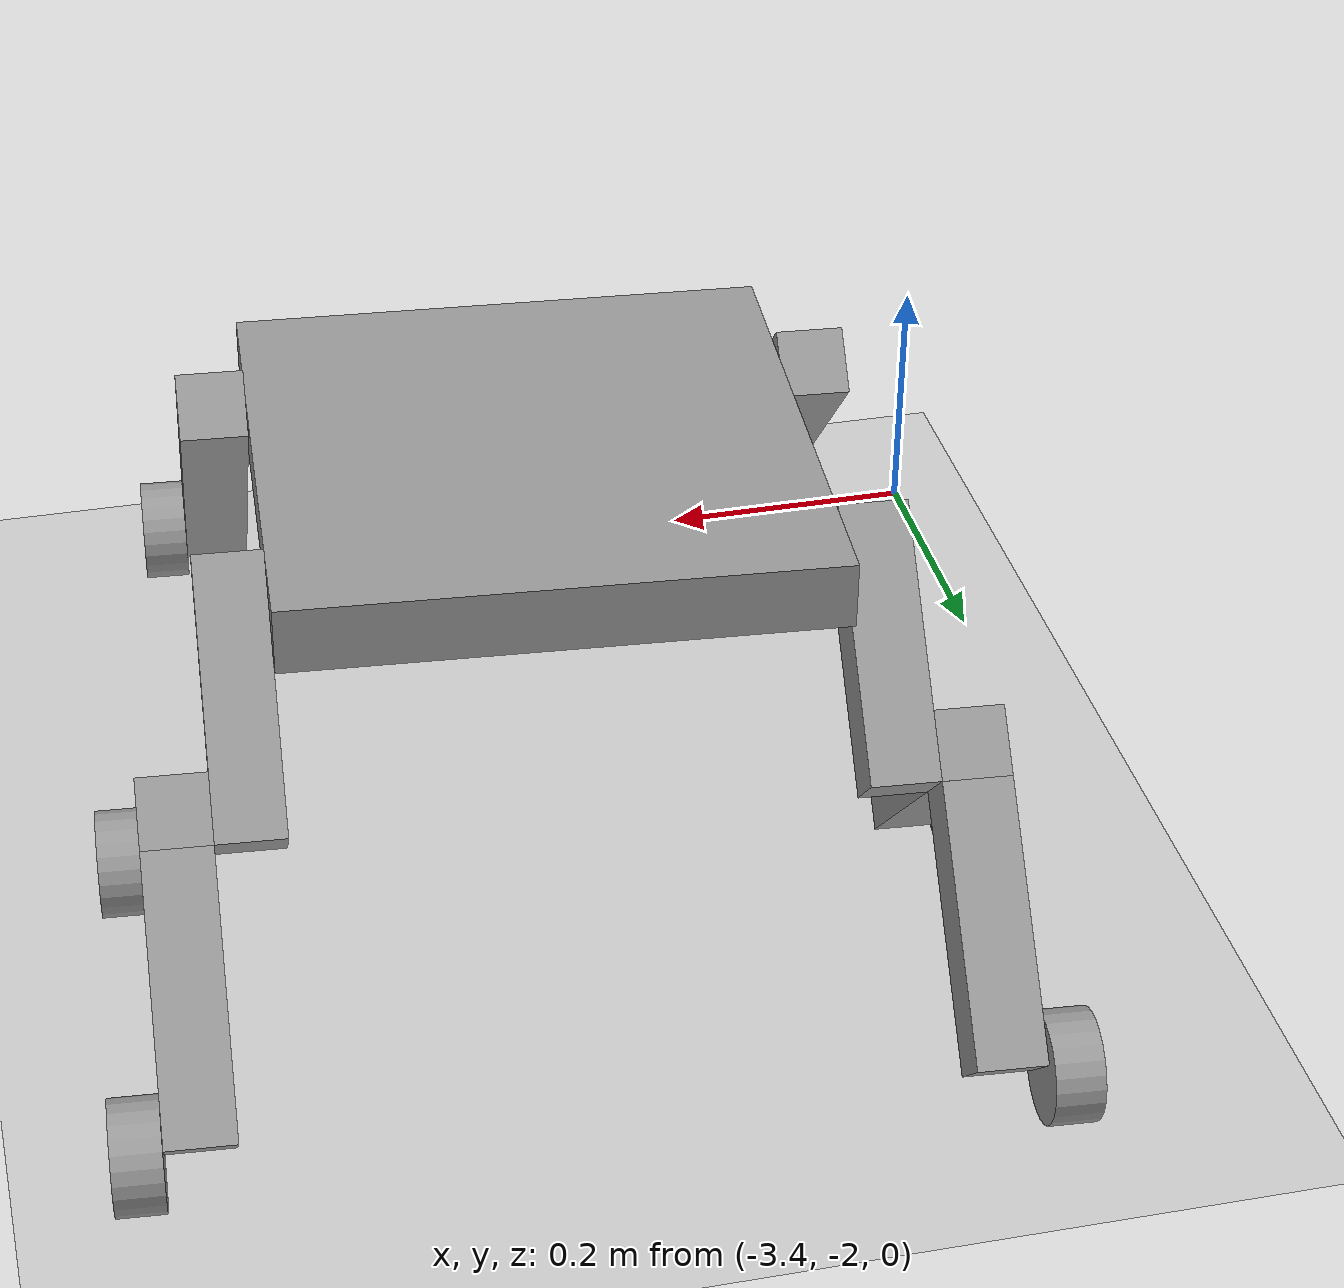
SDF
<sdf version="1.6">
 <world name="default">
  <model name="ground_plane">
   <static>1</static>
   <link name="link">
    <collision name="collision">
     <geometry><plane><normal>0 0 1</normal><size>100 100</size></plane></geometry>
     <surface><friction><ode><mu>100</mu><mu2>50</mu2></ode></friction></surface>
    </collision>
    <visual name="visual">
     <cast_shadows>0</cast_shadows>
     <geometry><plane><normal>0 0 1</normal><size>100 100</size></plane></geometry>
     <material>
      <script><uri>file://media/materials/scripts/gazebo.material</uri><name>Gazebo/Grey</name></script>
     </material>
    </visual>
   </link>
  </model>
  <model name="robot_1">
   <link name="link_0_clone">
    <inertial>
     <mass>1</mass>
     <inertia>
      <ixx>0.166667</ixx>
      <ixy>0</ixy>
      <ixz>0</ixz>
      <iyy>0.166667</iyy>
      <iyz>0</iyz>
      <izz>0.166667</izz>
     </inertia>
    </inertial>
    <pose>-0.152134 0.868305 0 0 -0 0</pose>
    <visual name="visual">
     <geometry><box><size>0.4 0.4 0.05</size></box></geometry>
     <material>
      <lighting>1</lighting>
      <script><uri>file://media/materials/scripts/gazebo.material</uri><name>Gazebo/Grey</name></script>
      <shader type="vertex"><normal_map>__default__</normal_map></shader>
      <ambient>0.3 0.3 0.3 1</ambient>
      <diffuse>0.7 0.7 0.7 1</diffuse>
      <specular>0.01 0.01 0.01 1</specular>
      <emissive>0 0 0 1</emissive>
     </material>
    </visual>
    <collision name="collision">
     <geometry><box><size>0.4 0.4 0.05</size></box></geometry>
     <surface>
      <friction>
       <ode><mu>1</mu><mu2>1</mu2><fdir1>0 0 0</fdir1><slip1>0</slip1><slip2>0</slip2></ode>
       <torsional>
        <coefficient>1</coefficient>
        <patch_radius>0</patch_radius>
        <surface_radius>0</surface_radius>
        <use_patch_radius>1</use_patch_radius>
        <ode><slip>0</slip></ode>
       </torsional>
      </friction>
      <bounce><restitution_coefficient>0</restitution_coefficient><threshold>1e+06</threshold></bounce>
      <contact>
       <collide_without_contact>0</collide_without_contact>
       <collide_without_contact_bitmask>1</collide_without_contact_bitmask>
       <collide_bitmask>1</collide_bitmask>
       <ode>
        <soft_cfm>0</soft_cfm>
        <soft_erp>0.2</soft_erp>
        <kp>1e+13</kp>
        <kd>1</kd>
        <max_vel>0.01</max_vel>
        <min_depth>0</min_depth>
       </ode>
       <bullet>
        <split_impulse>1</split_impulse>
        <split_impulse_penetration_threshold>-0.01</split_impulse_penetration_threshold>
        <soft_cfm>0</soft_cfm>
        <soft_erp>0.2</soft_erp>
        <kp>1e+13</kp>
        <kd>1</kd>
       </bullet>
      </contact>
     </surface>
    </collision>
   </link>
   <link name="link_0_clone_0">
    <inertial>
     <mass>1</mass>
     <inertia><ixx>0.145833</ixx><ixy>0</ixy><ixz>0</ixz><iyy>0.145833</iyy><iyz>0</iyz><izz>0.125</izz></inertia>
    </inertial>
    <pose>-0.469634 1.26045 -0.272118 -1.565 1.55233 -1.56544</pose>
    <visual name="visual">
     <geometry><cylinder><radius>0.04</radius><length>0.035</length></cylinder></geometry>
     <material>
      <lighting>1</lighting>
      <script><uri>file://media/materials/scripts/gazebo.material</uri><name>Gazebo/Grey</name></script>
      <shader type="vertex"><normal_map>__default__</normal_map></shader>
      <ambient>0.3 0.3 0.3 1</ambient>
      <diffuse>0.7 0.7 0.7 1</diffuse>
      <specular>0.01 0.01 0.01 1</specular>
      <emissive>0 0 0 1</emissive>
     </material>
    </visual>
    <collision name="collision">
     <geometry><cylinder><radius>0.04</radius><length>0.035</length></cylinder></geometry>
     <surface>
      <friction>
       <ode><mu>1</mu><mu2>1</mu2><fdir1>0 0 0</fdir1><slip1>0</slip1><slip2>0</slip2></ode>
       <torsional>
        <coefficient>1</coefficient>
        <patch_radius>0</patch_radius>
        <surface_radius>0</surface_radius>
        <use_patch_radius>1</use_patch_radius>
        <ode><slip>0</slip></ode>
       </torsional>
      </friction>
      <bounce><restitution_coefficient>0</restitution_coefficient><threshold>1e+06</threshold></bounce>
      <contact>
       <collide_without_contact>0</collide_without_contact>
       <collide_without_contact_bitmask>1</collide_without_contact_bitmask>
       <collide_bitmask>1</collide_bitmask>
       <ode>
        <soft_cfm>0</soft_cfm>
        <soft_erp>0.2</soft_erp>
        <kp>1e+13</kp>
        <kd>1</kd>
        <max_vel>0.01</max_vel>
        <min_depth>0</min_depth>
       </ode>
       <bullet>
        <split_impulse>1</split_impulse>
        <split_impulse_penetration_threshold>-0.01</split_impulse_penetration_threshold>
        <soft_cfm>0</soft_cfm>
        <soft_erp>0.2</soft_erp>
        <kp>1e+13</kp>
        <kd>1</kd>
       </bullet>
      </contact>
     </surface>
    </collision>
   </link>
   <link name="link_0_clone_1">
    <inertial>
     <mass>1</mass>
     <inertia><ixx>0.145833</ixx><ixy>0</ixy><ixz>0</ixz><iyy>0.145833</iyy><iyz>0</iyz><izz>0.125</izz></inertia>
    </inertial>
    <pose>-0.469634 0.942191 -0.272047 -1.565 1.55233 -1.56544</pose>
    <visual name="visual">
     <geometry><cylinder><radius>0.04</radius><length>0.035</length></cylinder></geometry>
     <material>
      <lighting>1</lighting>
      <script><uri>file://media/materials/scripts/gazebo.material</uri><name>Gazebo/Grey</name></script>
      <shader type="vertex"><normal_map>__default__</normal_map></shader>
      <ambient>0.3 0.3 0.3 1</ambient>
      <diffuse>0.7 0.7 0.7 1</diffuse>
      <specular>0.01 0.01 0.01 1</specular>
      <emissive>0 0 0 1</emissive>
     </material>
    </visual>
    <collision name="collision">
     <geometry><cylinder><radius>0.04</radius><length>0.035</length></cylinder></geometry>
     <surface>
      <friction>
       <ode><mu>1</mu><mu2>1</mu2><fdir1>0 0 0</fdir1><slip1>0</slip1><slip2>0</slip2></ode>
       <torsional>
        <coefficient>1</coefficient>
        <patch_radius>0</patch_radius>
        <surface_radius>0</surface_radius>
        <use_patch_radius>1</use_patch_radius>
        <ode><slip>0</slip></ode>
       </torsional>
      </friction>
      <bounce><restitution_coefficient>0</restitution_coefficient><threshold>1e+06</threshold></bounce>
      <contact>
       <collide_without_contact>0</collide_without_contact>
       <collide_without_contact_bitmask>1</collide_without_contact_bitmask>
       <collide_bitmask>1</collide_bitmask>
       <ode>
        <soft_cfm>0</soft_cfm>
        <soft_erp>0.2</soft_erp>
        <kp>1e+13</kp>
        <kd>1</kd>
        <max_vel>0.01</max_vel>
        <min_depth>0</min_depth>
       </ode>
       <bullet>
        <split_impulse>1</split_impulse>
        <split_impulse_penetration_threshold>-0.01</split_impulse_penetration_threshold>
        <soft_cfm>0</soft_cfm>
        <soft_erp>0.2</soft_erp>
        <kp>1e+13</kp>
        <kd>1</kd>
       </bullet>
      </contact>
     </surface>
    </collision>
   </link>
   <link name="link_0_clone_2">
    <inertial>
     <mass>1</mass>
     <inertia><ixx>0.145833</ixx><ixy>0</ixy><ixz>0</ixz><iyy>0.145833</iyy><iyz>0</iyz><izz>0.125</izz></inertia>
    </inertial>
    <pose>0.165366 1.26045 -0.272118 -1.56501 1.55233 -1.56545</pose>
    <visual name="visual">
     <geometry><cylinder><radius>0.04</radius><length>0.035</length></cylinder></geometry>
     <material>
      <lighting>1</lighting>
      <script><uri>file://media/materials/scripts/gazebo.material</uri><name>Gazebo/Grey</name></script>
      <shader type="vertex"><normal_map>__default__</normal_map></shader>
      <ambient>0.3 0.3 0.3 1</ambient>
      <diffuse>0.7 0.7 0.7 1</diffuse>
      <specular>0.01 0.01 0.01 1</specular>
      <emissive>0 0 0 1</emissive>
     </material>
    </visual>
    <collision name="collision">
     <geometry><cylinder><radius>0.04</radius><length>0.035</length></cylinder></geometry>
     <surface>
      <friction>
       <ode><mu>1</mu><mu2>1</mu2><fdir1>0 0 0</fdir1><slip1>0</slip1><slip2>0</slip2></ode>
       <torsional>
        <coefficient>1</coefficient>
        <patch_radius>0</patch_radius>
        <surface_radius>0</surface_radius>
        <use_patch_radius>1</use_patch_radius>
        <ode><slip>0</slip></ode>
       </torsional>
      </friction>
      <bounce><restitution_coefficient>0</restitution_coefficient><threshold>1e+06</threshold></bounce>
      <contact>
       <collide_without_contact>0</collide_without_contact>
       <collide_without_contact_bitmask>1</collide_without_contact_bitmask>
       <collide_bitmask>1</collide_bitmask>
       <ode>
        <soft_cfm>0</soft_cfm>
        <soft_erp>0.2</soft_erp>
        <kp>1e+13</kp>
        <kd>1</kd>
        <max_vel>0.01</max_vel>
        <min_depth>0</min_depth>
       </ode>
       <bullet>
        <split_impulse>1</split_impulse>
        <split_impulse_penetration_threshold>-0.01</split_impulse_penetration_threshold>
        <soft_cfm>0</soft_cfm>
        <soft_erp>0.2</soft_erp>
        <kp>1e+13</kp>
        <kd>1</kd>
       </bullet>
      </contact>
     </surface>
    </collision>
   </link>
   <link name="link_0_clone_3">
    <inertial>
     <mass>1</mass>
     <inertia><ixx>0.145833</ixx><ixy>0</ixy><ixz>0</ixz><iyy>0.145833</iyy><iyz>0</iyz><izz>0.125</izz></inertia>
    </inertial>
    <pose>-0.419634 0.501827 -0.261365 -1.565 1.55233 -1.56544</pose>
    <visual name="visual">
     <geometry><cylinder><radius>0.04</radius><length>0.035</length></cylinder></geometry>
     <material>
      <lighting>1</lighting>
      <script><uri>file://media/materials/scripts/gazebo.material</uri><name>Gazebo/Grey</name></script>
      <shader type="vertex"><normal_map>__default__</normal_map></shader>
      <ambient>0.3 0.3 0.3 1</ambient>
      <diffuse>0.7 0.7 0.7 1</diffuse>
      <specular>0.01 0.01 0.01 1</specular>
      <emissive>0 0 0 1</emissive>
     </material>
    </visual>
    <collision name="collision">
     <geometry><cylinder><radius>0.04</radius><length>0.035</length></cylinder></geometry>
     <surface>
      <friction>
       <ode><mu>1</mu><mu2>1</mu2><fdir1>0 0 0</fdir1><slip1>0</slip1><slip2>0</slip2></ode>
       <torsional>
        <coefficient>1</coefficient>
        <patch_radius>0</patch_radius>
        <surface_radius>0</surface_radius>
        <use_patch_radius>1</use_patch_radius>
        <ode><slip>0</slip></ode>
       </torsional>
      </friction>
      <bounce><restitution_coefficient>0</restitution_coefficient><threshold>1e+06</threshold></bounce>
      <contact>
       <collide_without_contact>0</collide_without_contact>
       <collide_without_contact_bitmask>1</collide_without_contact_bitmask>
       <collide_bitmask>1</collide_bitmask>
       <ode>
        <soft_cfm>0</soft_cfm>
        <soft_erp>0.2</soft_erp>
        <kp>1e+13</kp>
        <kd>1</kd>
        <max_vel>0.01</max_vel>
        <min_depth>0</min_depth>
       </ode>
       <bullet>
        <split_impulse>1</split_impulse>
        <split_impulse_penetration_threshold>-0.01</split_impulse_penetration_threshold>
        <soft_cfm>0</soft_cfm>
        <soft_erp>0.2</soft_erp>
        <kp>1e+13</kp>
        <kd>1</kd>
       </bullet>
      </contact>
     </surface>
    </collision>
   </link>
   <link name="link_0_clone_4">
    <inertial>
     <mass>1</mass>
     <inertia><ixx>0.145833</ixx><ixy>0</ixy><ixz>0</ixz><iyy>0.145833</iyy><iyz>0</iyz><izz>0.125</izz></inertia>
    </inertial>
    <pose>0.165366 0.942191 -0.272048 -1.565 1.55233 -1.56544</pose>
    <visual name="visual">
     <geometry><cylinder><radius>0.04</radius><length>0.035</length></cylinder></geometry>
     <material>
      <lighting>1</lighting>
      <script><uri>file://media/materials/scripts/gazebo.material</uri><name>Gazebo/Grey</name></script>
      <shader type="vertex"><normal_map>__default__</normal_map></shader>
      <ambient>0.3 0.3 0.3 1</ambient>
      <diffuse>0.7 0.7 0.7 1</diffuse>
      <specular>0.01 0.01 0.01 1</specular>
      <emissive>0 0 0 1</emissive>
     </material>
    </visual>
    <collision name="collision">
     <geometry><cylinder><radius>0.04</radius><length>0.035</length></cylinder></geometry>
     <surface>
      <friction>
       <ode><mu>1</mu><mu2>1</mu2><fdir1>0 0 0</fdir1><slip1>0</slip1><slip2>0</slip2></ode>
       <torsional>
        <coefficient>1</coefficient>
        <patch_radius>0</patch_radius>
        <surface_radius>0</surface_radius>
        <use_patch_radius>1</use_patch_radius>
        <ode><slip>0</slip></ode>
       </torsional>
      </friction>
      <bounce><restitution_coefficient>0</restitution_coefficient><threshold>1e+06</threshold></bounce>
      <contact>
       <collide_without_contact>0</collide_without_contact>
       <collide_without_contact_bitmask>1</collide_without_contact_bitmask>
       <collide_bitmask>1</collide_bitmask>
       <ode>
        <soft_cfm>0</soft_cfm>
        <soft_erp>0.2</soft_erp>
        <kp>1e+13</kp>
        <kd>1</kd>
        <max_vel>0.01</max_vel>
        <min_depth>0</min_depth>
       </ode>
       <bullet>
        <split_impulse>1</split_impulse>
        <split_impulse_penetration_threshold>-0.01</split_impulse_penetration_threshold>
        <soft_cfm>0</soft_cfm>
        <soft_erp>0.2</soft_erp>
        <kp>1e+13</kp>
        <kd>1</kd>
       </bullet>
      </contact>
     </surface>
    </collision>
   </link>
   <link name="link_0_clone_5">
    <inertial>
     <mass>1</mass>
     <inertia><ixx>0.145833</ixx><ixy>0</ixy><ixz>0</ixz><iyy>0.145833</iyy><iyz>0</iyz><izz>0.125</izz></inertia>
    </inertial>
    <pose>0.115366 0.501827 -0.261365 -1.565 1.55233 -1.56544</pose>
    <visual name="visual">
     <geometry><cylinder><radius>0.04</radius><length>0.035</length></cylinder></geometry>
     <material>
      <lighting>1</lighting>
      <script><uri>file://media/materials/scripts/gazebo.material</uri><name>Gazebo/Grey</name></script>
      <shader type="vertex"><normal_map>__default__</normal_map></shader>
      <ambient>0.3 0.3 0.3 1</ambient>
      <diffuse>0.7 0.7 0.7 1</diffuse>
      <specular>0.01 0.01 0.01 1</specular>
      <emissive>0 0 0 1</emissive>
     </material>
    </visual>
    <collision name="collision">
     <geometry><cylinder><radius>0.04</radius><length>0.035</length></cylinder></geometry>
     <surface>
      <friction>
       <ode><mu>1</mu><mu2>1</mu2><fdir1>0 0 0</fdir1><slip1>0</slip1><slip2>0</slip2></ode>
       <torsional>
        <coefficient>1</coefficient>
        <patch_radius>0</patch_radius>
        <surface_radius>0</surface_radius>
        <use_patch_radius>1</use_patch_radius>
        <ode><slip>0</slip></ode>
       </torsional>
      </friction>
      <bounce><restitution_coefficient>0</restitution_coefficient><threshold>1e+06</threshold></bounce>
      <contact>
       <collide_without_contact>0</collide_without_contact>
       <collide_without_contact_bitmask>1</collide_without_contact_bitmask>
       <collide_bitmask>1</collide_bitmask>
       <ode>
        <soft_cfm>0</soft_cfm>
        <soft_erp>0.2</soft_erp>
        <kp>1e+13</kp>
        <kd>1</kd>
        <max_vel>0.01</max_vel>
        <min_depth>0</min_depth>
       </ode>
       <bullet>
        <split_impulse>1</split_impulse>
        <split_impulse_penetration_threshold>-0.01</split_impulse_penetration_threshold>
        <soft_cfm>0</soft_cfm>
        <soft_erp>0.2</soft_erp>
        <kp>1e+13</kp>
        <kd>1</kd>
       </bullet>
      </contact>
     </surface>
    </collision>
   </link>
   <link name="link_1_clone">
    <inertial>
     <mass>1</mass>
     <inertia>
      <ixx>0.166667</ixx>
      <ixy>0</ixy>
      <ixz>0</ixz>
      <iyy>0.166667</iyy>
      <iyz>0</iyz>
      <izz>0.166667</izz>
     </inertia>
    </inertial>
    <pose>0.072866 0.643305 -0.12 0.785 -0 0</pose>
    <visual name="visual">
     <geometry><box><size>0.05 0.4 0.05</size></box></geometry>
     <material>
      <lighting>1</lighting>
      <script><uri>file://media/materials/scripts/gazebo.material</uri><name>Gazebo/Grey</name></script>
      <shader type="vertex"><normal_map>__default__</normal_map></shader>
      <ambient>0.3 0.3 0.3 1</ambient>
      <diffuse>0.7 0.7 0.7 1</diffuse>
      <specular>0.01 0.01 0.01 1</specular>
      <emissive>0 0 0 1</emissive>
     </material>
    </visual>
    <collision name="collision">
     <geometry><box><size>0.05 0.4 0.05</size></box></geometry>
     <surface>
      <friction>
       <ode><mu>1</mu><mu2>1</mu2><fdir1>0 0 0</fdir1><slip1>0</slip1><slip2>0</slip2></ode>
       <torsional>
        <coefficient>1</coefficient>
        <patch_radius>0</patch_radius>
        <surface_radius>0</surface_radius>
        <use_patch_radius>1</use_patch_radius>
        <ode><slip>0</slip></ode>
       </torsional>
      </friction>
      <bounce><restitution_coefficient>0</restitution_coefficient><threshold>1e+06</threshold></bounce>
      <contact>
       <collide_without_contact>0</collide_without_contact>
       <collide_without_contact_bitmask>1</collide_without_contact_bitmask>
       <collide_bitmask>1</collide_bitmask>
       <ode>
        <soft_cfm>0</soft_cfm>
        <soft_erp>0.2</soft_erp>
        <kp>1e+13</kp>
        <kd>1</kd>
        <max_vel>0.01</max_vel>
        <min_depth>0</min_depth>
       </ode>
       <bullet>
        <split_impulse>1</split_impulse>
        <split_impulse_penetration_threshold>-0.01</split_impulse_penetration_threshold>
        <soft_cfm>0</soft_cfm>
        <soft_erp>0.2</soft_erp>
        <kp>1e+13</kp>
        <kd>1</kd>
       </bullet>
      </contact>
     </surface>
    </collision>
   </link>
   <link name="link_1_clone_0">
    <inertial>
     <mass>1</mass>
     <inertia>
      <ixx>0.166667</ixx>
      <ixy>0</ixy>
      <ixz>0</ixz>
      <iyy>0.166667</iyy>
      <iyz>0</iyz>
      <izz>0.166667</izz>
     </inertia>
    </inertial>
    <pose>-0.377134 0.643305 -0.12 0.785 -0 0</pose>
    <visual name="visual">
     <geometry><box><size>0.05 0.4 0.05</size></box></geometry>
     <material>
      <lighting>1</lighting>
      <script><uri>file://media/materials/scripts/gazebo.material</uri><name>Gazebo/Grey</name></script>
      <shader type="vertex"><normal_map>__default__</normal_map></shader>
      <ambient>0.3 0.3 0.3 1</ambient>
      <diffuse>0.7 0.7 0.7 1</diffuse>
      <specular>0.01 0.01 0.01 1</specular>
      <emissive>0 0 0 1</emissive>
     </material>
    </visual>
    <collision name="collision">
     <geometry><box><size>0.05 0.4 0.05</size></box></geometry>
     <surface>
      <friction>
       <ode><mu>1</mu><mu2>1</mu2><fdir1>0 0 0</fdir1><slip1>0</slip1><slip2>0</slip2></ode>
       <torsional>
        <coefficient>1</coefficient>
        <patch_radius>0</patch_radius>
        <surface_radius>0</surface_radius>
        <use_patch_radius>1</use_patch_radius>
        <ode><slip>0</slip></ode>
       </torsional>
      </friction>
      <bounce><restitution_coefficient>0</restitution_coefficient><threshold>1e+06</threshold></bounce>
      <contact>
       <collide_without_contact>0</collide_without_contact>
       <collide_without_contact_bitmask>1</collide_without_contact_bitmask>
       <collide_bitmask>1</collide_bitmask>
       <ode>
        <soft_cfm>0</soft_cfm>
        <soft_erp>0.2</soft_erp>
        <kp>1e+13</kp>
        <kd>1</kd>
        <max_vel>0.01</max_vel>
        <min_depth>0</min_depth>
       </ode>
       <bullet>
        <split_impulse>1</split_impulse>
        <split_impulse_penetration_threshold>-0.01</split_impulse_penetration_threshold>
        <soft_cfm>0</soft_cfm>
        <soft_erp>0.2</soft_erp>
        <kp>1e+13</kp>
        <kd>1</kd>
       </bullet>
      </contact>
     </surface>
    </collision>
   </link>
   <link name="link_1_clone_1">
    <inertial>
     <mass>1</mass>
     <inertia>
      <ixx>0.166667</ixx>
      <ixy>0</ixy>
      <ixz>0</ixz>
      <iyy>0.166667</iyy>
      <iyz>0</iyz>
      <izz>0.166667</izz>
     </inertia>
    </inertial>
    <pose>-0.427134 1.01293 -0.201365 0.785 -0 0</pose>
    <visual name="visual">
     <geometry><box><size>0.05 0.2 0.05</size></box></geometry>
     <material>
      <lighting>1</lighting>
      <script><uri>file://media/materials/scripts/gazebo.material</uri><name>Gazebo/Grey</name></script>
      <shader type="vertex"><normal_map>__default__</normal_map></shader>
      <ambient>0.3 0.3 0.3 1</ambient>
      <diffuse>0.7 0.7 0.7 1</diffuse>
      <specular>0.01 0.01 0.01 1</specular>
      <emissive>0 0 0 1</emissive>
     </material>
    </visual>
    <collision name="collision">
     <geometry><box><size>0.05 0.2 0.05</size></box></geometry>
     <surface>
      <friction>
       <ode><mu>1</mu><mu2>1</mu2><fdir1>0 0 0</fdir1><slip1>0</slip1><slip2>0</slip2></ode>
       <torsional>
        <coefficient>1</coefficient>
        <patch_radius>0</patch_radius>
        <surface_radius>0</surface_radius>
        <use_patch_radius>1</use_patch_radius>
        <ode><slip>0</slip></ode>
       </torsional>
      </friction>
      <bounce><restitution_coefficient>0</restitution_coefficient><threshold>1e+06</threshold></bounce>
      <contact>
       <collide_without_contact>0</collide_without_contact>
       <collide_without_contact_bitmask>1</collide_without_contact_bitmask>
       <collide_bitmask>1</collide_bitmask>
       <ode>
        <soft_cfm>0</soft_cfm>
        <soft_erp>0.2</soft_erp>
        <kp>1e+13</kp>
        <kd>1</kd>
        <max_vel>0.01</max_vel>
        <min_depth>0</min_depth>
       </ode>
       <bullet>
        <split_impulse>1</split_impulse>
        <split_impulse_penetration_threshold>-0.01</split_impulse_penetration_threshold>
        <soft_cfm>0</soft_cfm>
        <soft_erp>0.2</soft_erp>
        <kp>1e+13</kp>
        <kd>1</kd>
       </bullet>
      </contact>
     </surface>
    </collision>
   </link>
   <link name="link_1_clone_2">
    <inertial>
     <mass>1</mass>
     <inertia>
      <ixx>0.166667</ixx>
      <ixy>0</ixy>
      <ixz>0</ixz>
      <iyy>0.166667</iyy>
      <iyz>0</iyz>
      <izz>0.166667</izz>
     </inertia>
    </inertial>
    <pose>0.122866 1.01293 -0.201365 0.785 -0 0</pose>
    <visual name="visual">
     <geometry><box><size>0.05 0.2 0.05</size></box></geometry>
     <material>
      <lighting>1</lighting>
      <script><uri>file://media/materials/scripts/gazebo.material</uri><name>Gazebo/Grey</name></script>
      <shader type="vertex"><normal_map>__default__</normal_map></shader>
      <ambient>0.3 0.3 0.3 1</ambient>
      <diffuse>0.7 0.7 0.7 1</diffuse>
      <specular>0.01 0.01 0.01 1</specular>
      <emissive>0 0 0 1</emissive>
     </material>
    </visual>
    <collision name="collision">
     <geometry><box><size>0.05 0.2 0.05</size></box></geometry>
     <surface>
      <friction>
       <ode><mu>1</mu><mu2>1</mu2><fdir1>0 0 0</fdir1><slip1>0</slip1><slip2>0</slip2></ode>
       <torsional>
        <coefficient>1</coefficient>
        <patch_radius>0</patch_radius>
        <surface_radius>0</surface_radius>
        <use_patch_radius>1</use_patch_radius>
        <ode><slip>0</slip></ode>
       </torsional>
      </friction>
      <bounce><restitution_coefficient>0</restitution_coefficient><threshold>1e+06</threshold></bounce>
      <contact>
       <collide_without_contact>0</collide_without_contact>
       <collide_without_contact_bitmask>1</collide_without_contact_bitmask>
       <collide_bitmask>1</collide_bitmask>
       <ode>
        <soft_cfm>0</soft_cfm>
        <soft_erp>0.2</soft_erp>
        <kp>1e+13</kp>
        <kd>1</kd>
        <max_vel>0.01</max_vel>
        <min_depth>0</min_depth>
       </ode>
       <bullet>
        <split_impulse>1</split_impulse>
        <split_impulse_penetration_threshold>-0.01</split_impulse_penetration_threshold>
        <soft_cfm>0</soft_cfm>
        <soft_erp>0.2</soft_erp>
        <kp>1e+13</kp>
        <kd>1</kd>
       </bullet>
      </contact>
     </surface>
    </collision>
   </link>
   <link name="link_1_clone_3">
    <inertial>
     <mass>1</mass>
     <inertia>
      <ixx>0.166667</ixx>
      <ixy>0</ixy>
      <ixz>0</ixz>
      <iyy>0.166667</iyy>
      <iyz>0</iyz>
      <izz>0.166667</izz>
     </inertia>
    </inertial>
    <pose>-0.427134 1.18971 -0.201435 -0.785 -0 -0</pose>
    <visual name="visual">
     <geometry><box><size>0.05 0.2 0.05</size></box></geometry>
     <material>
      <lighting>1</lighting>
      <script><uri>file://media/materials/scripts/gazebo.material</uri><name>Gazebo/Grey</name></script>
      <shader type="vertex"><normal_map>__default__</normal_map></shader>
      <ambient>0.3 0.3 0.3 1</ambient>
      <diffuse>0.7 0.7 0.7 1</diffuse>
      <specular>0.01 0.01 0.01 1</specular>
      <emissive>0 0 0 1</emissive>
     </material>
    </visual>
    <collision name="collision">
     <geometry><box><size>0.05 0.2 0.05</size></box></geometry>
     <surface>
      <friction>
       <ode><mu>1</mu><mu2>1</mu2><fdir1>0 0 0</fdir1><slip1>0</slip1><slip2>0</slip2></ode>
       <torsional>
        <coefficient>1</coefficient>
        <patch_radius>0</patch_radius>
        <surface_radius>0</surface_radius>
        <use_patch_radius>1</use_patch_radius>
        <ode><slip>0</slip></ode>
       </torsional>
      </friction>
      <bounce><restitution_coefficient>0</restitution_coefficient><threshold>1e+06</threshold></bounce>
      <contact>
       <collide_without_contact>0</collide_without_contact>
       <collide_without_contact_bitmask>1</collide_without_contact_bitmask>
       <collide_bitmask>1</collide_bitmask>
       <ode>
        <soft_cfm>0</soft_cfm>
        <soft_erp>0.2</soft_erp>
        <kp>1e+13</kp>
        <kd>1</kd>
        <max_vel>0.01</max_vel>
        <min_depth>0</min_depth>
       </ode>
       <bullet>
        <split_impulse>1</split_impulse>
        <split_impulse_penetration_threshold>-0.01</split_impulse_penetration_threshold>
        <soft_cfm>0</soft_cfm>
        <soft_erp>0.2</soft_erp>
        <kp>1e+13</kp>
        <kd>1</kd>
       </bullet>
      </contact>
     </surface>
    </collision>
   </link>
   <link name="link_1_clone_3_clone">
    <inertial>
     <mass>1</mass>
     <inertia>
      <ixx>0.166667</ixx>
      <ixy>0</ixy>
      <ixz>0</ixz>
      <iyy>0.166667</iyy>
      <iyz>0</iyz>
      <izz>0.166667</izz>
     </inertia>
    </inertial>
    <pose>-0.377134 1.04831 -0.06 -0.785 -0 -0</pose>
    <visual name="visual">
     <geometry><box><size>0.05 0.2 0.05</size></box></geometry>
     <material>
      <lighting>1</lighting>
      <script><uri>file://media/materials/scripts/gazebo.material</uri><name>Gazebo/Grey</name></script>
      <shader type="vertex"><normal_map>__default__</normal_map></shader>
      <ambient>0.3 0.3 0.3 1</ambient>
      <diffuse>0.7 0.7 0.7 1</diffuse>
      <specular>0.01 0.01 0.01 1</specular>
      <emissive>0 0 0 1</emissive>
     </material>
    </visual>
    <collision name="collision">
     <geometry><box><size>0.05 0.2 0.05</size></box></geometry>
     <surface>
      <friction>
       <ode><mu>1</mu><mu2>1</mu2><fdir1>0 0 0</fdir1><slip1>0</slip1><slip2>0</slip2></ode>
       <torsional>
        <coefficient>1</coefficient>
        <patch_radius>0</patch_radius>
        <surface_radius>0</surface_radius>
        <use_patch_radius>1</use_patch_radius>
        <ode><slip>0</slip></ode>
       </torsional>
      </friction>
      <bounce><restitution_coefficient>0</restitution_coefficient><threshold>1e+06</threshold></bounce>
      <contact>
       <collide_without_contact>0</collide_without_contact>
       <collide_without_contact_bitmask>1</collide_without_contact_bitmask>
       <collide_bitmask>1</collide_bitmask>
       <ode>
        <soft_cfm>0</soft_cfm>
        <soft_erp>0.2</soft_erp>
        <kp>1e+13</kp>
        <kd>1</kd>
        <max_vel>0.01</max_vel>
        <min_depth>0</min_depth>
       </ode>
       <bullet>
        <split_impulse>1</split_impulse>
        <split_impulse_penetration_threshold>-0.01</split_impulse_penetration_threshold>
        <soft_cfm>0</soft_cfm>
        <soft_erp>0.2</soft_erp>
        <kp>1e+13</kp>
        <kd>1</kd>
       </bullet>
      </contact>
     </surface>
    </collision>
   </link>
   <link name="link_1_clone_3_clone_clone">
    <inertial>
     <mass>1</mass>
     <inertia>
      <ixx>0.166667</ixx>
      <ixy>0</ixy>
      <ixz>0</ixz>
      <iyy>0.166667</iyy>
      <iyz>0</iyz>
      <izz>0.166667</izz>
     </inertia>
    </inertial>
    <pose>0.072866 1.04831 -0.06 -0.785 -0 -0</pose>
    <visual name="visual">
     <geometry><box><size>0.05 0.2 0.05</size></box></geometry>
     <material>
      <lighting>1</lighting>
      <script><uri>file://media/materials/scripts/gazebo.material</uri><name>Gazebo/Grey</name></script>
      <shader type="vertex"><normal_map>__default__</normal_map></shader>
      <ambient>0.3 0.3 0.3 1</ambient>
      <diffuse>0.7 0.7 0.7 1</diffuse>
      <specular>0.01 0.01 0.01 1</specular>
      <emissive>0 0 0 1</emissive>
     </material>
    </visual>
    <collision name="collision">
     <geometry><box><size>0.05 0.2 0.05</size></box></geometry>
     <surface>
      <friction>
       <ode><mu>1</mu><mu2>1</mu2><fdir1>0 0 0</fdir1><slip1>0</slip1><slip2>0</slip2></ode>
       <torsional>
        <coefficient>1</coefficient>
        <patch_radius>0</patch_radius>
        <surface_radius>0</surface_radius>
        <use_patch_radius>1</use_patch_radius>
        <ode><slip>0</slip></ode>
       </torsional>
      </friction>
      <bounce><restitution_coefficient>0</restitution_coefficient><threshold>1e+06</threshold></bounce>
      <contact>
       <collide_without_contact>0</collide_without_contact>
       <collide_without_contact_bitmask>1</collide_without_contact_bitmask>
       <collide_bitmask>1</collide_bitmask>
       <ode>
        <soft_cfm>0</soft_cfm>
        <soft_erp>0.2</soft_erp>
        <kp>1e+13</kp>
        <kd>1</kd>
        <max_vel>0.01</max_vel>
        <min_depth>0</min_depth>
       </ode>
       <bullet>
        <split_impulse>1</split_impulse>
        <split_impulse_penetration_threshold>-0.01</split_impulse_penetration_threshold>
        <soft_cfm>0</soft_cfm>
        <soft_erp>0.2</soft_erp>
        <kp>1e+13</kp>
        <kd>1</kd>
       </bullet>
      </contact>
     </surface>
    </collision>
   </link>
   <link name="link_1_clone_3_clone_clone_0">
    <inertial>
     <mass>1</mass>
     <inertia>
      <ixx>0.166667</ixx>
      <ixy>0</ixy>
      <ixz>0</ixz>
      <iyy>0.166667</iyy>
      <iyz>0</iyz>
      <izz>0.166667</izz>
     </inertia>
    </inertial>
    <pose>0.122866 1.18971 -0.201435 -0.785 -0 -0</pose>
    <visual name="visual">
     <geometry><box><size>0.05 0.2 0.05</size></box></geometry>
     <material>
      <lighting>1</lighting>
      <script><uri>file://media/materials/scripts/gazebo.material</uri><name>Gazebo/Grey</name></script>
      <shader type="vertex"><normal_map>__default__</normal_map></shader>
      <ambient>0.3 0.3 0.3 1</ambient>
      <diffuse>0.7 0.7 0.7 1</diffuse>
      <specular>0.01 0.01 0.01 1</specular>
      <emissive>0 0 0 1</emissive>
     </material>
    </visual>
    <collision name="collision">
     <geometry><box><size>0.05 0.2 0.05</size></box></geometry>
     <surface>
      <friction>
       <ode><mu>1</mu><mu2>1</mu2><fdir1>0 0 0</fdir1><slip1>0</slip1><slip2>0</slip2></ode>
       <torsional>
        <coefficient>1</coefficient>
        <patch_radius>0</patch_radius>
        <surface_radius>0</surface_radius>
        <use_patch_radius>1</use_patch_radius>
        <ode><slip>0</slip></ode>
       </torsional>
      </friction>
      <bounce><restitution_coefficient>0</restitution_coefficient><threshold>1e+06</threshold></bounce>
      <contact>
       <collide_without_contact>0</collide_without_contact>
       <collide_without_contact_bitmask>1</collide_without_contact_bitmask>
       <collide_bitmask>1</collide_bitmask>
       <ode>
        <soft_cfm>0</soft_cfm>
        <soft_erp>0.2</soft_erp>
        <kp>1e+13</kp>
        <kd>1</kd>
        <max_vel>0.01</max_vel>
        <min_depth>0</min_depth>
       </ode>
       <bullet>
        <split_impulse>1</split_impulse>
        <split_impulse_penetration_threshold>-0.01</split_impulse_penetration_threshold>
        <soft_cfm>0</soft_cfm>
        <soft_erp>0.2</soft_erp>
        <kp>1e+13</kp>
        <kd>1</kd>
       </bullet>
      </contact>
     </surface>
    </collision>
   </link>
   <link name="link_2_clone">
    <inertial>
     <mass>1</mass>
     <inertia>
      <ixx>0.166667</ixx>
      <ixy>0</ixy>
      <ixz>0</ixz>
      <iyy>0.166667</iyy>
      <iyz>0</iyz>
      <izz>0.166667</izz>
     </inertia>
    </inertial>
    <pose>-0.427134 1.10136 -0.113012 0.785 -0 0</pose>
    <visual name="visual">
     <geometry><box><size>0.05 0.05 0.05</size></box></geometry>
     <material>
      <lighting>1</lighting>
      <script><uri>file://media/materials/scripts/gazebo.material</uri><name>Gazebo/Grey</name></script>
      <shader type="vertex"><normal_map>__default__</normal_map></shader>
      <ambient>0.3 0.3 0.3 1</ambient>
      <diffuse>0.7 0.7 0.7 1</diffuse>
      <specular>0.01 0.01 0.01 1</specular>
      <emissive>0 0 0 1</emissive>
     </material>
    </visual>
    <collision name="collision">
     <geometry><box><size>0.05 0.05 0.05</size></box></geometry>
     <surface>
      <friction>
       <ode><mu>1</mu><mu2>1</mu2><fdir1>0 0 0</fdir1><slip1>0</slip1><slip2>0</slip2></ode>
       <torsional>
        <coefficient>1</coefficient>
        <patch_radius>0</patch_radius>
        <surface_radius>0</surface_radius>
        <use_patch_radius>1</use_patch_radius>
        <ode><slip>0</slip></ode>
       </torsional>
      </friction>
      <bounce><restitution_coefficient>0</restitution_coefficient><threshold>1e+06</threshold></bounce>
      <contact>
       <collide_without_contact>0</collide_without_contact>
       <collide_without_contact_bitmask>1</collide_without_contact_bitmask>
       <collide_bitmask>1</collide_bitmask>
       <ode>
        <soft_cfm>0</soft_cfm>
        <soft_erp>0.2</soft_erp>
        <kp>1e+13</kp>
        <kd>1</kd>
        <max_vel>0.01</max_vel>
        <min_depth>0</min_depth>
       </ode>
       <bullet>
        <split_impulse>1</split_impulse>
        <split_impulse_penetration_threshold>-0.01</split_impulse_penetration_threshold>
        <soft_cfm>0</soft_cfm>
        <soft_erp>0.2</soft_erp>
        <kp>1e+13</kp>
        <kd>1</kd>
       </bullet>
      </contact>
     </surface>
    </collision>
   </link>
   <link name="link_2_clone_0">
    <inertial>
     <mass>1</mass>
     <inertia>
      <ixx>0.166667</ixx>
      <ixy>0</ixy>
      <ixz>0</ixz>
      <iyy>0.166667</iyy>
      <iyz>0</iyz>
      <izz>0.166667</izz>
     </inertia>
    </inertial>
    <pose>0.122866 1.10136 -0.113012 0.785 -0 0</pose>
    <visual name="visual">
     <geometry><box><size>0.05 0.05 0.05</size></box></geometry>
     <material>
      <lighting>1</lighting>
      <script><uri>file://media/materials/scripts/gazebo.material</uri><name>Gazebo/Grey</name></script>
      <shader type="vertex"><normal_map>__default__</normal_map></shader>
      <ambient>0.3 0.3 0.3 1</ambient>
      <diffuse>0.7 0.7 0.7 1</diffuse>
      <specular>0.01 0.01 0.01 1</specular>
      <emissive>0 0 0 1</emissive>
     </material>
    </visual>
    <collision name="collision">
     <geometry><box><size>0.05 0.05 0.05</size></box></geometry>
     <surface>
      <friction>
       <ode><mu>1</mu><mu2>1</mu2><fdir1>0 0 0</fdir1><slip1>0</slip1><slip2>0</slip2></ode>
       <torsional>
        <coefficient>1</coefficient>
        <patch_radius>0</patch_radius>
        <surface_radius>0</surface_radius>
        <use_patch_radius>1</use_patch_radius>
        <ode><slip>0</slip></ode>
       </torsional>
      </friction>
      <bounce><restitution_coefficient>0</restitution_coefficient><threshold>1e+06</threshold></bounce>
      <contact>
       <collide_without_contact>0</collide_without_contact>
       <collide_without_contact_bitmask>1</collide_without_contact_bitmask>
       <collide_bitmask>1</collide_bitmask>
       <ode>
        <soft_cfm>0</soft_cfm>
        <soft_erp>0.2</soft_erp>
        <kp>1e+13</kp>
        <kd>1</kd>
        <max_vel>0.01</max_vel>
        <min_depth>0</min_depth>
       </ode>
       <bullet>
        <split_impulse>1</split_impulse>
        <split_impulse_penetration_threshold>-0.01</split_impulse_penetration_threshold>
        <soft_cfm>0</soft_cfm>
        <soft_erp>0.2</soft_erp>
        <kp>1e+13</kp>
        <kd>1</kd>
       </bullet>
      </contact>
     </surface>
    </collision>
   </link>
   <joint name="link_0_clone_JOINT_0" type="fixed">
    <parent>link_0_clone</parent>
    <child>link_1_clone</child>
    <physics>
     <ode><limit><cfm>0</cfm><erp>0.2</erp></limit><suspension><cfm>0</cfm><erp>0.2</erp></suspension></ode>
    </physics>
   </joint>
   <joint name="link_0_clone_JOINT_1" type="fixed">
    <parent>link_0_clone</parent>
    <child>link_1_clone_0</child>
    <physics>
     <ode><limit><cfm>0</cfm><erp>0.2</erp></limit><suspension><cfm>0</cfm><erp>0.2</erp></suspension></ode>
    </physics>
   </joint>
   <joint name="link_0_clone_JOINT_2" type="fixed">
    <parent>link_0_clone</parent>
    <child>link_1_clone_3_clone_clone</child>
    <physics>
     <ode><limit><cfm>0</cfm><erp>0.2</erp></limit><suspension><cfm>0</cfm><erp>0.2</erp></suspension></ode>
    </physics>
   </joint>
   <joint name="link_0_clone_JOINT_3" type="fixed">
    <parent>link_0_clone</parent>
    <child>link_1_clone_3_clone</child>
    <physics>
     <ode><limit><cfm>0</cfm><erp>0.2</erp></limit><suspension><cfm>0</cfm><erp>0.2</erp></suspension></ode>
    </physics>
   </joint>
   <joint name="link_1_clone_0_JOINT_3" type="revolute">
    <parent>link_1_clone_0</parent>
    <child>link_0_clone_3</child>
    <axis>
     <xyz>0 0 1</xyz>
     <use_parent_model_frame>0</use_parent_model_frame>
     <limit>
      <lower>-1.79769e+308</lower>
      <upper>1.79769e+308</upper>
      <effort>-1</effort>
      <velocity>-1</velocity>
     </limit>
     <dynamics>
      <spring_reference>0</spring_reference>
      <spring_stiffness>0</spring_stiffness>
      <damping>0</damping>
     </dynamics>
    </axis>
    <physics>
     <ode><limit><cfm>0</cfm><erp>0.2</erp></limit><suspension><cfm>0</cfm><erp>0.2</erp></suspension></ode>
    </physics>
   </joint>
   <joint name="link_1_clone_1_JOINT_2" type="revolute">
    <parent>link_1_clone_1</parent>
    <child>link_0_clone_1</child>
    <axis>
     <xyz>0 0 1</xyz>
     <use_parent_model_frame>0</use_parent_model_frame>
     <limit>
      <lower>-1.79769e+308</lower>
      <upper>1.79769e+308</upper>
      <effort>-1</effort>
      <velocity>-1</velocity>
     </limit>
     <dynamics>
      <spring_reference>0</spring_reference>
      <spring_stiffness>0</spring_stiffness>
      <damping>0</damping>
     </dynamics>
    </axis>
    <physics>
     <ode><limit><cfm>0</cfm><erp>0.2</erp></limit><suspension><cfm>0</cfm><erp>0.2</erp></suspension></ode>
    </physics>
   </joint>
   <joint name="link_1_clone_2_JOINT_5" type="revolute">
    <parent>link_1_clone_2</parent>
    <child>link_0_clone_4</child>
    <axis>
     <xyz>0 0 1</xyz>
     <use_parent_model_frame>0</use_parent_model_frame>
     <limit>
      <lower>-1.79769e+308</lower>
      <upper>1.79769e+308</upper>
      <effort>-1</effort>
      <velocity>-1</velocity>
     </limit>
     <dynamics>
      <spring_reference>0</spring_reference>
      <spring_stiffness>0</spring_stiffness>
      <damping>0</damping>
     </dynamics>
    </axis>
    <physics>
     <ode><limit><cfm>0</cfm><erp>0.2</erp></limit><suspension><cfm>0</cfm><erp>0.2</erp></suspension></ode>
    </physics>
   </joint>
   <joint name="link_1_clone_3_JOINT_1" type="revolute">
    <parent>link_1_clone_3</parent>
    <child>link_0_clone_0</child>
    <axis>
     <xyz>0 0 1</xyz>
     <use_parent_model_frame>0</use_parent_model_frame>
     <limit>
      <lower>-1.79769e+308</lower>
      <upper>1.79769e+308</upper>
      <effort>-1</effort>
      <velocity>-1</velocity>
     </limit>
     <dynamics>
      <spring_reference>0</spring_reference>
      <spring_stiffness>0</spring_stiffness>
      <damping>0</damping>
     </dynamics>
    </axis>
    <physics>
     <ode><limit><cfm>0</cfm><erp>0.2</erp></limit><suspension><cfm>0</cfm><erp>0.2</erp></suspension></ode>
    </physics>
   </joint>
   <joint name="link_1_clone_3_clone_JOINT_0" type="revolute">
    <parent>link_1_clone_3_clone</parent>
    <child>link_2_clone</child>
    <axis>
     <xyz>1 0 0</xyz>
     <use_parent_model_frame>0</use_parent_model_frame>
     <limit>
      <lower>-1.79769e+308</lower>
      <upper>1.79769e+308</upper>
      <effort>-1</effort>
      <velocity>-1</velocity>
     </limit>
     <dynamics>
      <spring_reference>0</spring_reference>
      <spring_stiffness>0</spring_stiffness>
      <damping>0</damping>
      <friction>0</friction>
     </dynamics>
    </axis>
    <physics>
     <ode><limit><cfm>0</cfm><erp>0.2</erp></limit><suspension><cfm>0</cfm><erp>0.2</erp></suspension></ode>
    </physics>
   </joint>
   <joint name="link_1_clone_3_clone_clone_0_JOINT_6" type="revolute">
    <parent>link_1_clone_3_clone_clone_0</parent>
    <child>link_0_clone_2</child>
    <axis>
     <xyz>0 0 1</xyz>
     <use_parent_model_frame>0</use_parent_model_frame>
     <limit>
      <lower>-1.79769e+308</lower>
      <upper>1.79769e+308</upper>
      <effort>-1</effort>
      <velocity>-1</velocity>
     </limit>
     <dynamics>
      <spring_reference>0</spring_reference>
      <spring_stiffness>0</spring_stiffness>
      <damping>0</damping>
     </dynamics>
    </axis>
    <physics>
     <ode><limit><cfm>0</cfm><erp>0.2</erp></limit><suspension><cfm>0</cfm><erp>0.2</erp></suspension></ode>
    </physics>
   </joint>
   <joint name="link_1_clone_3_clone_clone_JOINT_4" type="revolute">
    <parent>link_1_clone_3_clone_clone</parent>
    <child>link_2_clone_0</child>
    <axis>
     <xyz>1 0 0</xyz>
     <use_parent_model_frame>0</use_parent_model_frame>
     <limit>
      <lower>-1.79769e+308</lower>
      <upper>1.79769e+308</upper>
      <effort>-1</effort>
      <velocity>-1</velocity>
     </limit>
     <dynamics>
      <spring_reference>0</spring_reference>
      <spring_stiffness>0</spring_stiffness>
      <damping>0</damping>
      <friction>0</friction>
     </dynamics>
    </axis>
    <physics>
     <ode><limit><cfm>0</cfm><erp>0.2</erp></limit><suspension><cfm>0</cfm><erp>0.2</erp></suspension></ode>
    </physics>
   </joint>
   <joint name="link_1_clone_JOINT_4" type="revolute">
    <parent>link_1_clone</parent>
    <child>link_0_clone_5</child>
    <axis>
     <xyz>0 0 1</xyz>
     <use_parent_model_frame>0</use_parent_model_frame>
     <limit>
      <lower>-1.79769e+308</lower>
      <upper>1.79769e+308</upper>
      <effort>-1</effort>
      <velocity>-1</velocity>
     </limit>
     <dynamics>
      <spring_reference>0</spring_reference>
      <spring_stiffness>0</spring_stiffness>
      <damping>0</damping>
     </dynamics>
    </axis>
    <physics>
     <ode><limit><cfm>0</cfm><erp>0.2</erp></limit><suspension><cfm>0</cfm><erp>0.2</erp></suspension></ode>
    </physics>
   </joint>
   <joint name="link_2_clone_0_JOINT_10" type="fixed">
    <parent>link_2_clone_0</parent>
    <child>link_1_clone_2</child>
    <physics>
     <ode><limit><cfm>0</cfm><erp>0.2</erp></limit><suspension><cfm>0</cfm><erp>0.2</erp></suspension></ode>
    </physics>
   </joint>
   <joint name="link_2_clone_0_JOINT_7" type="fixed">
    <parent>link_2_clone_0</parent>
    <child>link_1_clone_3_clone_clone_0</child>
    <physics>
     <ode><limit><cfm>0</cfm><erp>0.2</erp></limit><suspension><cfm>0</cfm><erp>0.2</erp></suspension></ode>
    </physics>
   </joint>
   <joint name="link_2_clone_JOINT_8" type="fixed">
    <parent>link_2_clone</parent>
    <child>link_1_clone_3</child>
    <physics>
     <ode><limit><cfm>0</cfm><erp>0.2</erp></limit><suspension><cfm>0</cfm><erp>0.2</erp></suspension></ode>
    </physics>
   </joint>
   <joint name="link_2_clone_JOINT_9" type="fixed">
    <parent>link_2_clone</parent>
    <child>link_1_clone_1</child>
    <physics>
     <ode><limit><cfm>0</cfm><erp>0.2</erp></limit><suspension><cfm>0</cfm><erp>0.2</erp></suspension></ode>
    </physics>
   </joint>
   <static>0</static>
   <pose>-2.91098 -2.51757 0.292336 0.017915 -1e-06 -0.075421</pose>
  </model>
 </world>
</sdf>
